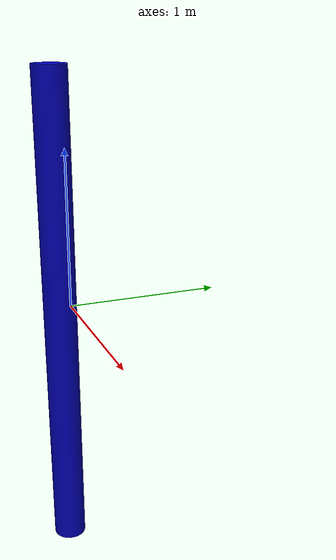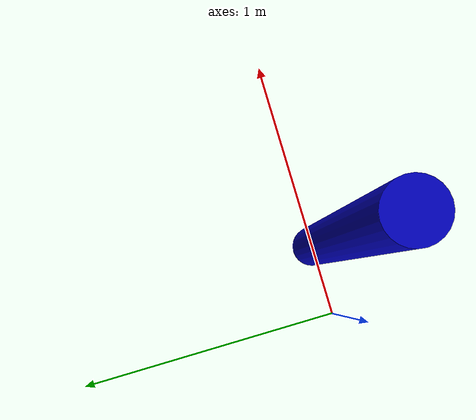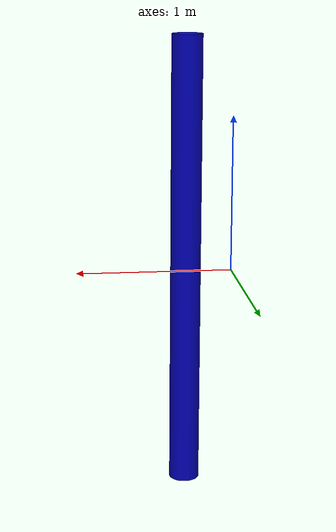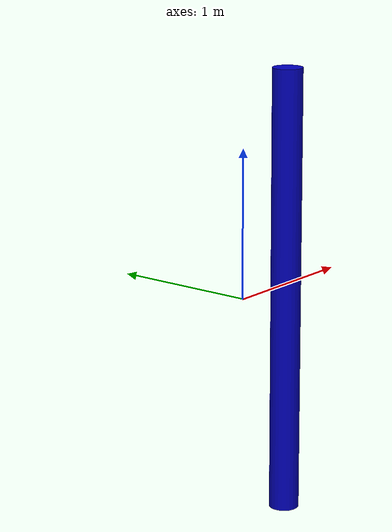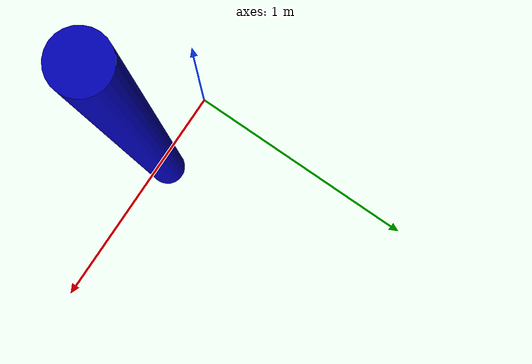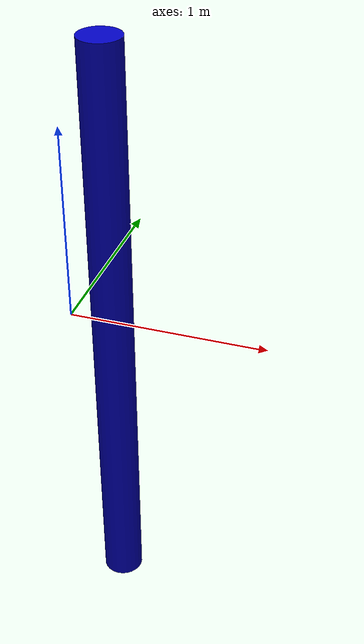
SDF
<?xml version='1.0'?>
<sdf version='1.7'>
    <model name='pipe_3'>
      <link name='link'>
        <inertial>
          <mass>6126.11</mass>
          <inertia>
            <ixx>893.39</ixx>
            <ixy>0</ixy>
            <ixz>0</ixz>
            <iyy>893.39</iyy>
            <iyz>0</iyz>
            <izz>765.763</izz>
          </inertia>
          <pose>0 0 0 0 -0 0</pose>
        </inertial>
        <self_collide>0</self_collide>
        <enable_wind>0</enable_wind>
        <kinematic>0</kinematic>
        <pose>0 0 -0 0 -0 0</pose>
        <gravity>1</gravity>
        <visual name='visual'>
          <geometry>
            <cylinder>
              <radius>0.1</radius>
              <length>3</length>
            </cylinder>
          </geometry>
          <material>
            <script>
              <name>Gazebo/Grey</name>
              <uri>file://media/materials/scripts/gazebo.material</uri>
            </script>
            <shader type='pixel'>
              <normal_map>__default__</normal_map>
            </shader>
            <ambient>0.0 0.0 0.3 1</ambient>
            <diffuse>0.0 0.0 0.75 1</diffuse>
            <specular>0.01 0.01 0.01 1</specular>
            <emissive>0 0 0 1</emissive>
          </material>
          <pose>0 0 0 0 -0 0</pose>
          <transparency>0</transparency>
          <cast_shadows>1</cast_shadows>
        </visual>
        <collision name='collision'>
          <laser_retro>0</laser_retro>
          <max_contacts>10</max_contacts>
          <pose>0 0 0 0 -0 0</pose>
          <geometry>
            <cylinder>
              <radius>0.1</radius>
              <length>3</length>
            </cylinder>
          </geometry>
          <surface>
            <friction>
              <ode>
                <mu>1</mu>
                <mu2>1</mu2>
                <fdir1>0 0 0</fdir1>
                <slip1>0</slip1>
                <slip2>0</slip2>
              </ode>
              <torsional>
                <coefficient>1</coefficient>
                <patch_radius>0</patch_radius>
                <surface_radius>0</surface_radius>
                <use_patch_radius>1</use_patch_radius>
                <ode>
                  <slip>0</slip>
                </ode>
              </torsional>
            </friction>
            <bounce>
              <restitution_coefficient>0</restitution_coefficient>
              <threshold>1e+06</threshold>
            </bounce>
            <contact>
              <collide_without_contact>0</collide_without_contact>
              <collide_without_contact_bitmask>1</collide_without_contact_bitmask>
              <collide_bitmask>1</collide_bitmask>
              <ode>
                <soft_cfm>0</soft_cfm>
                <soft_erp>0.2</soft_erp>
                <kp>1e+13</kp>
                <kd>1</kd>
                <max_vel>0.01</max_vel>
                <min_depth>0</min_depth>
              </ode>
              <bullet>
                <split_impulse>1</split_impulse>
                <split_impulse_penetration_threshold>-0.01</split_impulse_penetration_threshold>
                <soft_cfm>0</soft_cfm>
                <soft_erp>0.2</soft_erp>
                <kp>1e+13</kp>
                <kd>1</kd>
              </bullet>
            </contact>
          </surface>
        </collision>
      </link>
      <static>1</static>
      <allow_auto_disable>1</allow_auto_disable>
      <pose>0.277397 -0.141878 0 0 -0 0</pose>
    </model>
</sdf>
